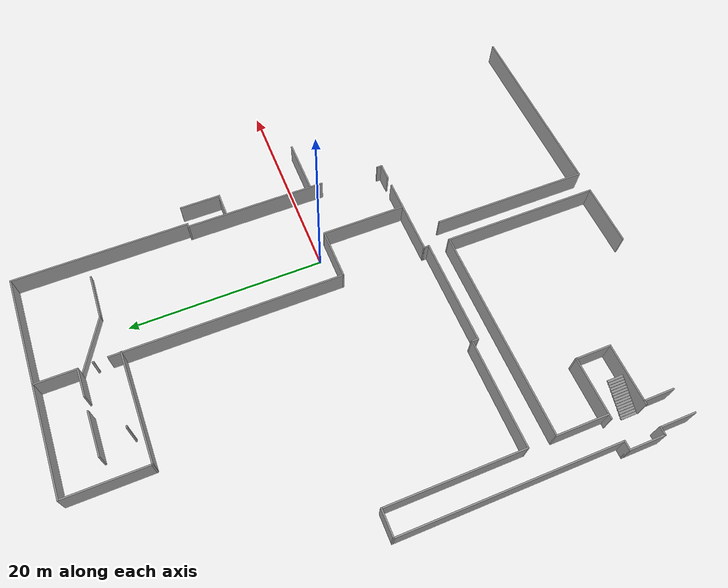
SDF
<sdf version="1.6">
 <model name="uia_section">
  <pose>10.5615 0.198111 0 0 -0 0</pose>
  <link name="Stairs_1">
   <visual name="Stairs_1_Visual_0">
    <pose>-36.0937 -20.6482 0.058333 0 -0 1.5708</pose>
    <geometry><box><size>1.646 0.228733 0.116667</size></box></geometry>
    <material>
     <script><uri>file://media/materials/scripts/gazebo.material</uri><name>Gazebo/Grey</name></script>
     <ambient>1 1 1 1</ambient>
    </material>
    <meta><layer>0</layer></meta>
   </visual>
   <collision name="Stairs_1_Collision_0">
    <geometry><box><size>1.646 0.228733 0.116667</size></box></geometry>
    <pose>-36.0937 -20.6482 0.058333 0 -0 1.5708</pose>
   </collision>
   <visual name="Stairs_1_Visual_1">
    <pose>-35.865 -20.6482 0.175 0 -0 1.5708</pose>
    <geometry><box><size>1.646 0.228733 0.116667</size></box></geometry>
    <material>
     <script><uri>file://media/materials/scripts/gazebo.material</uri><name>Gazebo/Grey</name></script>
     <ambient>1 1 1 1</ambient>
    </material>
    <meta><layer>0</layer></meta>
   </visual>
   <collision name="Stairs_1_Collision_1">
    <geometry><box><size>1.646 0.228733 0.116667</size></box></geometry>
    <pose>-35.865 -20.6482 0.175 0 -0 1.5708</pose>
   </collision>
   <visual name="Stairs_1_Visual_2">
    <pose>-35.6363 -20.6482 0.291667 0 -0 1.5708</pose>
    <geometry><box><size>1.646 0.228733 0.116667</size></box></geometry>
    <material>
     <script><uri>file://media/materials/scripts/gazebo.material</uri><name>Gazebo/Grey</name></script>
     <ambient>1 1 1 1</ambient>
    </material>
    <meta><layer>0</layer></meta>
   </visual>
   <collision name="Stairs_1_Collision_2">
    <geometry><box><size>1.646 0.228733 0.116667</size></box></geometry>
    <pose>-35.6363 -20.6482 0.291667 0 -0 1.5708</pose>
   </collision>
   <visual name="Stairs_1_Visual_3">
    <pose>-35.4075 -20.6482 0.408333 0 -0 1.5708</pose>
    <geometry><box><size>1.646 0.228733 0.116667</size></box></geometry>
    <material>
     <script><uri>file://media/materials/scripts/gazebo.material</uri><name>Gazebo/Grey</name></script>
     <ambient>1 1 1 1</ambient>
    </material>
    <meta><layer>0</layer></meta>
   </visual>
   <collision name="Stairs_1_Collision_3">
    <geometry><box><size>1.646 0.228733 0.116667</size></box></geometry>
    <pose>-35.4075 -20.6482 0.408333 0 -0 1.5708</pose>
   </collision>
   <visual name="Stairs_1_Visual_4">
    <pose>-35.1788 -20.6482 0.525 0 -0 1.5708</pose>
    <geometry><box><size>1.646 0.228733 0.116667</size></box></geometry>
    <material>
     <script><uri>file://media/materials/scripts/gazebo.material</uri><name>Gazebo/Grey</name></script>
     <ambient>1 1 1 1</ambient>
    </material>
    <meta><layer>0</layer></meta>
   </visual>
   <collision name="Stairs_1_Collision_4">
    <geometry><box><size>1.646 0.228733 0.116667</size></box></geometry>
    <pose>-35.1788 -20.6482 0.525 0 -0 1.5708</pose>
   </collision>
   <visual name="Stairs_1_Visual_5">
    <pose>-34.9501 -20.6482 0.641667 0 -0 1.5708</pose>
    <geometry><box><size>1.646 0.228733 0.116667</size></box></geometry>
    <material>
     <script><uri>file://media/materials/scripts/gazebo.material</uri><name>Gazebo/Grey</name></script>
     <ambient>1 1 1 1</ambient>
    </material>
    <meta><layer>0</layer></meta>
   </visual>
   <collision name="Stairs_1_Collision_5">
    <geometry><box><size>1.646 0.228733 0.116667</size></box></geometry>
    <pose>-34.9501 -20.6482 0.641667 0 -0 1.5708</pose>
   </collision>
   <visual name="Stairs_1_Visual_6">
    <pose>-34.7213 -20.6482 0.758333 0 -0 1.5708</pose>
    <geometry><box><size>1.646 0.228733 0.116667</size></box></geometry>
    <material>
     <script><uri>file://media/materials/scripts/gazebo.material</uri><name>Gazebo/Grey</name></script>
     <ambient>1 1 1 1</ambient>
    </material>
    <meta><layer>0</layer></meta>
   </visual>
   <collision name="Stairs_1_Collision_6">
    <geometry><box><size>1.646 0.228733 0.116667</size></box></geometry>
    <pose>-34.7213 -20.6482 0.758333 0 -0 1.5708</pose>
   </collision>
   <visual name="Stairs_1_Visual_7">
    <pose>-34.4926 -20.6482 0.875 0 -0 1.5708</pose>
    <geometry><box><size>1.646 0.228733 0.116667</size></box></geometry>
    <material>
     <script><uri>file://media/materials/scripts/gazebo.material</uri><name>Gazebo/Grey</name></script>
     <ambient>1 1 1 1</ambient>
    </material>
    <meta><layer>0</layer></meta>
   </visual>
   <collision name="Stairs_1_Collision_7">
    <geometry><box><size>1.646 0.228733 0.116667</size></box></geometry>
    <pose>-34.4926 -20.6482 0.875 0 -0 1.5708</pose>
   </collision>
   <visual name="Stairs_1_Visual_8">
    <pose>-34.2639 -20.6482 0.991667 0 -0 1.5708</pose>
    <geometry><box><size>1.646 0.228733 0.116667</size></box></geometry>
    <material>
     <script><uri>file://media/materials/scripts/gazebo.material</uri><name>Gazebo/Grey</name></script>
     <ambient>1 1 1 1</ambient>
    </material>
    <meta><layer>0</layer></meta>
   </visual>
   <collision name="Stairs_1_Collision_8">
    <geometry><box><size>1.646 0.228733 0.116667</size></box></geometry>
    <pose>-34.2639 -20.6482 0.991667 0 -0 1.5708</pose>
   </collision>
   <visual name="Stairs_1_Visual_9">
    <pose>-34.0351 -20.6482 1.10833 0 -0 1.5708</pose>
    <geometry><box><size>1.646 0.228733 0.116667</size></box></geometry>
    <material>
     <script><uri>file://media/materials/scripts/gazebo.material</uri><name>Gazebo/Grey</name></script>
     <ambient>1 1 1 1</ambient>
    </material>
    <meta><layer>0</layer></meta>
   </visual>
   <collision name="Stairs_1_Collision_9">
    <geometry><box><size>1.646 0.228733 0.116667</size></box></geometry>
    <pose>-34.0351 -20.6482 1.10833 0 -0 1.5708</pose>
   </collision>
   <visual name="Stairs_1_Visual_10">
    <pose>-33.8064 -20.6482 1.225 0 -0 1.5708</pose>
    <geometry><box><size>1.646 0.228733 0.116667</size></box></geometry>
    <material>
     <script><uri>file://media/materials/scripts/gazebo.material</uri><name>Gazebo/Grey</name></script>
     <ambient>1 1 1 1</ambient>
    </material>
    <meta><layer>0</layer></meta>
   </visual>
   <collision name="Stairs_1_Collision_10">
    <geometry><box><size>1.646 0.228733 0.116667</size></box></geometry>
    <pose>-33.8064 -20.6482 1.225 0 -0 1.5708</pose>
   </collision>
   <visual name="Stairs_1_Visual_11">
    <pose>-33.5777 -20.6482 1.34167 0 -0 1.5708</pose>
    <geometry><box><size>1.646 0.228733 0.116667</size></box></geometry>
    <material>
     <script><uri>file://media/materials/scripts/gazebo.material</uri><name>Gazebo/Grey</name></script>
     <ambient>1 1 1 1</ambient>
    </material>
    <meta><layer>0</layer></meta>
   </visual>
   <collision name="Stairs_1_Collision_11">
    <geometry><box><size>1.646 0.228733 0.116667</size></box></geometry>
    <pose>-33.5777 -20.6482 1.34167 0 -0 1.5708</pose>
   </collision>
   <visual name="Stairs_1_Visual_12">
    <pose>-33.3489 -20.6482 1.45833 0 -0 1.5708</pose>
    <geometry><box><size>1.646 0.228733 0.116667</size></box></geometry>
    <material>
     <script><uri>file://media/materials/scripts/gazebo.material</uri><name>Gazebo/Grey</name></script>
     <ambient>1 1 1 1</ambient>
    </material>
    <meta><layer>0</layer></meta>
   </visual>
   <collision name="Stairs_1_Collision_12">
    <geometry><box><size>1.646 0.228733 0.116667</size></box></geometry>
    <pose>-33.3489 -20.6482 1.45833 0 -0 1.5708</pose>
   </collision>
   <visual name="Stairs_1_Visual_13">
    <pose>-33.1202 -20.6482 1.575 0 -0 1.5708</pose>
    <geometry><box><size>1.646 0.228733 0.116667</size></box></geometry>
    <material>
     <script><uri>file://media/materials/scripts/gazebo.material</uri><name>Gazebo/Grey</name></script>
     <ambient>1 1 1 1</ambient>
    </material>
    <meta><layer>0</layer></meta>
   </visual>
   <collision name="Stairs_1_Collision_13">
    <geometry><box><size>1.646 0.228733 0.116667</size></box></geometry>
    <pose>-33.1202 -20.6482 1.575 0 -0 1.5708</pose>
   </collision>
   <visual name="Stairs_1_Visual_14">
    <pose>-32.8915 -20.6482 1.69167 0 -0 1.5708</pose>
    <geometry><box><size>1.646 0.228733 0.116667</size></box></geometry>
    <material>
     <script><uri>file://media/materials/scripts/gazebo.material</uri><name>Gazebo/Grey</name></script>
     <ambient>1 1 1 1</ambient>
    </material>
    <meta><layer>0</layer></meta>
   </visual>
   <collision name="Stairs_1_Collision_14">
    <geometry><box><size>1.646 0.228733 0.116667</size></box></geometry>
    <pose>-32.8915 -20.6482 1.69167 0 -0 1.5708</pose>
   </collision>
  </link>
  <link name="Wall_100">
   <collision name="Wall_100_Collision">
    <geometry><box><size>2.94746 0.15 2.5</size></box></geometry>
    <pose>0 0 1.25 0 -0 0</pose>
   </collision>
   <visual name="Wall_100_Visual">
    <pose>0 0 1.25 0 -0 0</pose>
    <geometry><box><size>2.94746 0.15 2.5</size></box></geometry>
    <material>
     <script><uri>file://media/materials/scripts/gazebo.material</uri><name>Gazebo/Grey</name></script>
     <ambient>1 1 1 1</ambient>
    </material>
    <meta><layer>0</layer></meta>
   </visual>
   <pose>-15.482 24.9228 0 0 -0 -3.14153</pose>
  </link>
  <link name="Wall_102">
   <collision name="Wall_102_Collision">
    <geometry><box><size>4.5 0.15 2.5</size></box></geometry>
    <pose>0 0 1.25 0 -0 0</pose>
   </collision>
   <visual name="Wall_102_Visual">
    <pose>0 0 1.25 0 -0 0</pose>
    <geometry><box><size>4.5 0.15 2.5</size></box></geometry>
    <material>
     <script><uri>file://media/materials/scripts/gazebo.material</uri><name>Gazebo/Grey</name></script>
     <ambient>1 1 1 1</ambient>
    </material>
    <meta><layer>0</layer></meta>
   </visual>
   <pose>-20.5803 24.9407 0 0 -0 3.14159</pose>
  </link>
  <link name="Wall_104">
   <collision name="Wall_104_Collision">
    <geometry><box><size>3.75 0.15 2.5</size></box></geometry>
    <pose>0 0 1.25 0 -0 0</pose>
   </collision>
   <visual name="Wall_104_Visual">
    <pose>0 0 1.25 0 -0 0</pose>
    <geometry><box><size>3.75 0.15 2.5</size></box></geometry>
    <material>
     <script><uri>file://media/materials/scripts/gazebo.material</uri><name>Gazebo/Grey</name></script>
     <ambient>1 1 1 1</ambient>
    </material>
    <meta><layer>0</layer></meta>
   </visual>
   <pose>-30.0635 -19.7841 0 0 -0 1.5708</pose>
  </link>
  <link name="Wall_161">
   <collision name="Wall_161_Collision">
    <geometry><box><size>11.553 0.15 2.5</size></box></geometry>
    <pose>0 0 1.25 0 -0 0</pose>
   </collision>
   <visual name="Wall_161_Visual">
    <pose>0 0 1.25 0 -0 0</pose>
    <geometry><box><size>11.553 0.15 2.5</size></box></geometry>
    <material>
     <script><uri>file://media/materials/scripts/gazebo.material</uri><name>Gazebo/Grey</name></script>
     <ambient>1 1 1 1</ambient>
    </material>
    <meta><layer>0</layer></meta>
   </visual>
   <pose>-8.382 29.0229 0 0 -0 0</pose>
  </link>
  <link name="Wall_162">
   <collision name="Wall_162_Collision">
    <geometry><box><size>18 0.15 2.5</size></box></geometry>
    <pose>0 0 1.25 0 -0 0</pose>
   </collision>
   <visual name="Wall_162_Visual">
    <pose>0 0 1.25 0 -0 0</pose>
    <geometry><box><size>18 0.15 2.5</size></box></geometry>
    <material>
     <script><uri>file://media/materials/scripts/gazebo.material</uri><name>Gazebo/Grey</name></script>
     <ambient>1 1 1 1</ambient>
    </material>
    <meta><layer>0</layer></meta>
   </visual>
   <pose>-2.6805 20.0979 0 0 -0 -1.5708</pose>
  </link>
  <link name="Wall_163">
   <collision name="Wall_163_Collision">
    <geometry><box><size>0.488 0.15 2.5</size></box></geometry>
    <pose>0 0 1.25 0 -0 0</pose>
   </collision>
   <visual name="Wall_163_Visual">
    <pose>0 0 1.25 0 -0 0</pose>
    <geometry><box><size>0.488 0.15 2.5</size></box></geometry>
    <material>
     <script><uri>file://media/materials/scripts/gazebo.material</uri><name>Gazebo/Grey</name></script>
     <ambient>1 1 1 1</ambient>
    </material>
    <meta><layer>0</layer></meta>
   </visual>
   <pose>-2.8495 11.1729 0 0 -0 3.14159</pose>
  </link>
  <link name="Wall_164">
   <collision name="Wall_164_Collision">
    <geometry><box><size>14.5908 0.15 2.5</size></box></geometry>
    <pose>0 0 1.25 0 -0 0</pose>
   </collision>
   <visual name="Wall_164_Visual">
    <pose>0 0 1.25 0 -0 0</pose>
    <geometry><box><size>14.5908 0.15 2.5</size></box></geometry>
    <material>
     <script><uri>file://media/materials/scripts/gazebo.material</uri><name>Gazebo/Grey</name></script>
     <ambient>1 1 1 1</ambient>
    </material>
    <meta><layer>0</layer></meta>
   </visual>
   <pose>-3.0185 3.95239 0 0 -0 -1.5708</pose>
  </link>
  <link name="Wall_166">
   <collision name="Wall_166_Collision">
    <geometry><box><size>5.75 0.15 2.5</size></box></geometry>
    <pose>0 0 1.25 0 -0 0</pose>
   </collision>
   <visual name="Wall_166_Visual">
    <pose>0 0 1.25 0 -0 0</pose>
    <geometry><box><size>5.75 0.15 2.5</size></box></geometry>
    <material>
     <script><uri>file://media/materials/scripts/gazebo.material</uri><name>Gazebo/Grey</name></script>
     <ambient>1 1 1 1</ambient>
    </material>
    <meta><layer>0</layer></meta>
   </visual>
   <pose>-0.211923 -2.01323 0 0 -0 0</pose>
  </link>
  <link name="Wall_180">
   <collision name="Wall_180_Collision">
    <geometry><box><size>2.5 0.15 2.5</size></box></geometry>
    <pose>0 0 1.25 0 -0 0</pose>
   </collision>
   <visual name="Wall_180_Visual">
    <pose>0 0 1.25 0 -0 0</pose>
    <geometry><box><size>2.5 0.15 2.5</size></box></geometry>
    <material>
     <script><uri>file://media/materials/scripts/gazebo.material</uri><name>Gazebo/Grey</name></script>
     <ambient>1 1 1 1</ambient>
    </material>
    <meta><layer>0</layer></meta>
   </visual>
   <pose>-1.74605 7.14725 0 0 -0 0</pose>
  </link>
  <link name="Wall_181">
   <collision name="Wall_181_Collision">
    <geometry><box><size>4.25 0.15 2.5</size></box></geometry>
    <pose>0 0 1.25 0 -0 0</pose>
   </collision>
   <visual name="Wall_181_Visual">
    <pose>0 0 1.25 0 -0 0</pose>
    <geometry><box><size>4.25 0.15 2.5</size></box></geometry>
    <material>
     <script><uri>file://media/materials/scripts/gazebo.material</uri><name>Gazebo/Grey</name></script>
     <ambient>1 1 1 1</ambient>
    </material>
    <meta><layer>0</layer></meta>
   </visual>
   <pose>-0.571054 9.19725 0 0 -0 1.5708</pose>
  </link>
  <link name="Wall_217">
   <collision name="Wall_217_Collision">
    <geometry><box><size>0.2 0.15 2.5</size></box></geometry>
    <pose>0 0 1.25 0 -0 0</pose>
   </collision>
   <visual name="Wall_217_Visual">
    <pose>0 0 1.25 0 -0 0</pose>
    <geometry><box><size>0.2 0.15 2.5</size></box></geometry>
    <material>
     <script><uri>file://media/materials/scripts/gazebo.material</uri><name>Gazebo/Grey</name></script>
     <ambient>1 1 1 1</ambient>
    </material>
    <meta><layer>0</layer></meta>
   </visual>
   <pose>-13.9694 23.444 0 0 -0 1.5708</pose>
  </link>
  <link name="Wall_219">
   <collision name="Wall_219_Collision">
    <geometry><box><size>6.18675 0.15 1</size></box></geometry>
    <pose>0 0 0.5 0 -0 0</pose>
   </collision>
   <visual name="Wall_219_Visual">
    <pose>0 0 0.5 0 -0 0</pose>
    <geometry><box><size>6.18675 0.15 1</size></box></geometry>
    <material>
     <script><uri>file://media/materials/scripts/gazebo.material</uri><name>Gazebo/Grey</name></script>
     <ambient>1 1 1 1</ambient>
    </material>
    <meta><layer>0</layer></meta>
   </visual>
   <pose>-11.442 23.4624 0 0 -0 -0.505071</pose>
  </link>
  <link name="Wall_220">
   <collision name="Wall_220_Collision">
    <geometry><box><size>4.78733 0.15 1</size></box></geometry>
    <pose>0 0 0.5 0 -0 0</pose>
   </collision>
   <visual name="Wall_220_Visual">
    <pose>0 0 0.5 0 -0 0</pose>
    <geometry><box><size>4.78733 0.15 1</size></box></geometry>
    <material>
     <script><uri>file://media/materials/scripts/gazebo.material</uri><name>Gazebo/Grey</name></script>
     <ambient>1 1 1 1</ambient>
    </material>
    <meta><layer>0</layer></meta>
   </visual>
   <pose>-6.483 21.9284 0 0 -0 -0.031705</pose>
  </link>
  <link name="Wall_223">
   <collision name="Wall_223_Collision">
    <geometry><box><size>0.25 0.15 4</size></box></geometry>
    <pose>0 0 2 0 -0 0</pose>
   </collision>
   <visual name="Wall_223_Visual">
    <pose>0 0 2 0 -0 0</pose>
    <geometry><box><size>0.25 0.15 4</size></box></geometry>
    <material>
     <script><uri>file://media/materials/scripts/gazebo.material</uri><name>Gazebo/Grey</name></script>
     <ambient>1 1 1 1</ambient>
    </material>
    <meta><layer>0</layer></meta>
   </visual>
   <pose>-21.6725 21.8669 0 0 -0 0</pose>
  </link>
  <link name="Wall_32">
   <collision name="Wall_32_Collision">
    <geometry><box><size>0.6 0.15 2.5</size></box></geometry>
    <pose>0 0 1.25 0 -0 0</pose>
   </collision>
   <visual name="Wall_32_Visual">
    <pose>0 0 1.25 0 -0 0</pose>
    <geometry><box><size>0.6 0.15 2.5</size></box></geometry>
    <material>
     <script><uri>file://media/materials/scripts/gazebo.material</uri><name>Gazebo/Grey</name></script>
     <ambient>1 1 1 1</ambient>
    </material>
    <meta><layer>0</layer></meta>
   </visual>
   <pose>-3.2585 -9.76611 0 0 -0 -1.5708</pose>
  </link>
  <link name="Wall_34">
   <collision name="Wall_34_Collision">
    <geometry><box><size>1.75 0.15 2.5</size></box></geometry>
    <pose>0 0 1.25 0 -0 0</pose>
   </collision>
   <visual name="Wall_34_Visual">
    <pose>0 0 1.25 0 -0 0</pose>
    <geometry><box><size>1.75 0.15 2.5</size></box></geometry>
    <material>
     <script><uri>file://media/materials/scripts/gazebo.material</uri><name>Gazebo/Grey</name></script>
     <ambient>1 1 1 1</ambient>
    </material>
    <meta><layer>0</layer></meta>
   </visual>
   <pose>-4.0585 -9.99111 0 0 -0 3.14159</pose>
  </link>
  <link name="Wall_36">
   <collision name="Wall_36_Collision">
    <geometry><box><size>8.25 0.15 2.5</size></box></geometry>
    <pose>0 0 1.25 0 -0 0</pose>
   </collision>
   <visual name="Wall_36_Visual">
    <pose>0 0 1.25 0 -0 0</pose>
    <geometry><box><size>8.25 0.15 2.5</size></box></geometry>
    <material>
     <script><uri>file://media/materials/scripts/gazebo.material</uri><name>Gazebo/Grey</name></script>
     <ambient>1 1 1 1</ambient>
    </material>
    <meta><layer>0</layer></meta>
   </visual>
   <pose>-10.0254 -9.96974 0 0 -0 3.14159</pose>
  </link>
  <link name="Wall_37">
   <collision name="Wall_37_Collision">
    <geometry><box><size>0.65 0.15 2.5</size></box></geometry>
    <pose>0 0 1.25 0 -0 0</pose>
   </collision>
   <visual name="Wall_37_Visual">
    <pose>0 0 1.25 0 -0 0</pose>
    <geometry><box><size>0.65 0.15 2.5</size></box></geometry>
    <material>
     <script><uri>file://media/materials/scripts/gazebo.material</uri><name>Gazebo/Grey</name></script>
     <ambient>1 1 1 1</ambient>
    </material>
    <meta><layer>0</layer></meta>
   </visual>
   <pose>-14.0754 -10.2197 0 0 -0 -1.5708</pose>
  </link>
  <link name="Wall_40">
   <collision name="Wall_40_Collision">
    <geometry><box><size>11 0.15 2.5</size></box></geometry>
    <pose>0 0 1.25 0 -0 0</pose>
   </collision>
   <visual name="Wall_40_Visual">
    <pose>0 0 1.25 0 -0 0</pose>
    <geometry><box><size>11 0.15 2.5</size></box></geometry>
    <material>
     <script><uri>file://media/materials/scripts/gazebo.material</uri><name>Gazebo/Grey</name></script>
     <ambient>1 1 1 1</ambient>
    </material>
    <meta><layer>0</layer></meta>
   </visual>
   <pose>-19.5004 -10.4697 0 0 -0 3.14159</pose>
  </link>
  <link name="Wall_41">
   <collision name="Wall_41_Collision">
    <geometry><box><size>0.75 0.15 2.5</size></box></geometry>
    <pose>0 0 1.25 0 -0 0</pose>
   </collision>
   <visual name="Wall_41_Visual">
    <pose>0 0 1.25 0 -0 0</pose>
    <geometry><box><size>0.75 0.15 2.5</size></box></geometry>
    <material>
     <script><uri>file://media/materials/scripts/gazebo.material</uri><name>Gazebo/Grey</name></script>
     <ambient>1 1 1 1</ambient>
    </material>
    <meta><layer>0</layer></meta>
   </visual>
   <pose>-24.9254 -10.1697 0 0 -0 1.5708</pose>
  </link>
  <link name="Wall_42">
   <collision name="Wall_42_Collision">
    <geometry><box><size>11 0.15 2.5</size></box></geometry>
    <pose>0 0 1.25 0 -0 0</pose>
   </collision>
   <visual name="Wall_42_Visual">
    <pose>0 0 1.25 0 -0 0</pose>
    <geometry><box><size>11 0.15 2.5</size></box></geometry>
    <material>
     <script><uri>file://media/materials/scripts/gazebo.material</uri><name>Gazebo/Grey</name></script>
     <ambient>1 1 1 1</ambient>
    </material>
    <meta><layer>0</layer></meta>
   </visual>
   <pose>-30.3504 -9.86974 0 0 -0 3.14159</pose>
  </link>
  <link name="Wall_45">
   <collision name="Wall_45_Collision">
    <geometry><box><size>14.0216 0.15 2.5</size></box></geometry>
    <pose>0 0 1.25 0 -0 0</pose>
   </collision>
   <visual name="Wall_45_Visual">
    <pose>0 0 1.25 0 -0 0</pose>
    <geometry><box><size>14.0216 0.15 2.5</size></box></geometry>
    <material>
     <script><uri>file://media/materials/scripts/gazebo.material</uri><name>Gazebo/Grey</name></script>
     <ambient>1 1 1 1</ambient>
    </material>
    <meta><layer>0</layer></meta>
   </visual>
   <pose>-35.7754 -2.93393 0 0 -0 1.57081</pose>
  </link>
  <link name="Wall_46">
   <collision name="Wall_46_Collision">
    <geometry><box><size>2.716 0.15 2.5</size></box></geometry>
    <pose>0 0 1.25 0 -0 0</pose>
   </collision>
   <visual name="Wall_46_Visual">
    <pose>0 0 1.25 0 -0 0</pose>
    <geometry><box><size>2.716 0.15 2.5</size></box></geometry>
    <material>
     <script><uri>file://media/materials/scripts/gazebo.material</uri><name>Gazebo/Grey</name></script>
     <ambient>1 1 1 1</ambient>
    </material>
    <meta><layer>0</layer></meta>
   </visual>
   <pose>-37.0585 4.00189 0 0 -0 3.14159</pose>
  </link>
  <link name="Wall_48">
   <collision name="Wall_48_Collision">
    <geometry><box><size>22.1363 0.15 2.5</size></box></geometry>
    <pose>0 0 1.25 0 -0 0</pose>
   </collision>
   <visual name="Wall_48_Visual">
    <pose>0 0 1.25 0 -0 0</pose>
    <geometry><box><size>22.1363 0.15 2.5</size></box></geometry>
    <material>
     <script><uri>file://media/materials/scripts/gazebo.material</uri><name>Gazebo/Grey</name></script>
     <ambient>1 1 1 1</ambient>
    </material>
    <meta><layer>0</layer></meta>
   </visual>
   <pose>-38.3415 -6.99111 0 0 -0 -1.5708</pose>
  </link>
  <link name="Wall_50">
   <collision name="Wall_50_Collision">
    <geometry><box><size>1 0.15 2.5</size></box></geometry>
    <pose>0 0 1.25 0 -0 0</pose>
   </collision>
   <visual name="Wall_50_Visual">
    <pose>0 0 1.25 0 -0 0</pose>
    <geometry><box><size>1 0.15 2.5</size></box></geometry>
    <material>
     <script><uri>file://media/materials/scripts/gazebo.material</uri><name>Gazebo/Grey</name></script>
     <ambient>1 1 1 1</ambient>
    </material>
    <meta><layer>0</layer></meta>
   </visual>
   <pose>-38.7665 -17.9841 0 0 -0 3.14159</pose>
  </link>
  <link name="Wall_51">
   <collision name="Wall_51_Collision">
    <geometry><box><size>3.75 0.15 2.5</size></box></geometry>
    <pose>0 0 1.25 0 -0 0</pose>
   </collision>
   <visual name="Wall_51_Visual">
    <pose>0 0 1.25 0 -0 0</pose>
    <geometry><box><size>3.75 0.15 2.5</size></box></geometry>
    <material>
     <script><uri>file://media/materials/scripts/gazebo.material</uri><name>Gazebo/Grey</name></script>
     <ambient>1 1 1 1</ambient>
    </material>
    <meta><layer>0</layer></meta>
   </visual>
   <pose>-39.1915 -19.7841 0 0 -0 -1.5708</pose>
  </link>
  <link name="Wall_52">
   <collision name="Wall_52_Collision">
    <geometry><box><size>0.9 0.15 2.5</size></box></geometry>
    <pose>0 0 1.25 0 -0 0</pose>
   </collision>
   <visual name="Wall_52_Visual">
    <pose>0 0 1.25 0 -0 0</pose>
    <geometry><box><size>0.9 0.15 2.5</size></box></geometry>
    <material>
     <script><uri>file://media/materials/scripts/gazebo.material</uri><name>Gazebo/Grey</name></script>
     <ambient>1 1 1 1</ambient>
    </material>
    <meta><layer>0</layer></meta>
   </visual>
   <pose>-38.8165 -21.5841 0 0 -0 0</pose>
  </link>
  <link name="Wall_54">
   <collision name="Wall_54_Collision">
    <geometry><box><size>3.75 0.15 2.5</size></box></geometry>
    <pose>0 0 1.25 0 -0 0</pose>
   </collision>
   <visual name="Wall_54_Visual">
    <pose>0 0 1.25 0 -0 0</pose>
    <geometry><box><size>3.75 0.15 2.5</size></box></geometry>
    <material>
     <script><uri>file://media/materials/scripts/gazebo.material</uri><name>Gazebo/Grey</name></script>
     <ambient>1 1 1 1</ambient>
    </material>
    <meta><layer>0</layer></meta>
   </visual>
   <pose>-38.4415 -23.3841 0 0 -0 -1.5708</pose>
  </link>
  <link name="Wall_64">
   <collision name="Wall_64_Collision">
    <geometry><box><size>6.25 0.15 2.5</size></box></geometry>
    <pose>0 0 1.25 0 -0 0</pose>
   </collision>
   <visual name="Wall_64_Visual">
    <pose>0 0 1.25 0 -0 0</pose>
    <geometry><box><size>6.25 0.15 2.5</size></box></geometry>
    <material>
     <script><uri>file://media/materials/scripts/gazebo.material</uri><name>Gazebo/Grey</name></script>
     <ambient>1 1 1 1</ambient>
    </material>
    <meta><layer>0</layer></meta>
   </visual>
   <pose>-33.1135 -17.9841 0 0 -0 3.14159</pose>
  </link>
  <link name="Wall_69">
   <collision name="Wall_69_Collision">
    <geometry><box><size>6.25 0.15 2.5</size></box></geometry>
    <pose>0 0 1.25 0 -0 0</pose>
   </collision>
   <visual name="Wall_69_Visual">
    <pose>0 0 1.25 0 -0 0</pose>
    <geometry><box><size>6.25 0.15 2.5</size></box></geometry>
    <material>
     <script><uri>file://media/materials/scripts/gazebo.material</uri><name>Gazebo/Grey</name></script>
     <ambient>1 1 1 1</ambient>
    </material>
    <meta><layer>0</layer></meta>
   </visual>
   <pose>-33.1135 -21.5841 0 0 -0 3.14159</pose>
  </link>
  <link name="Wall_71">
   <collision name="Wall_71_Collision">
    <geometry><box><size>3.21395 0.15 2.5</size></box></geometry>
    <pose>0 0 1.25 0 -0 0</pose>
   </collision>
   <visual name="Wall_71_Visual">
    <pose>0 0 1.25 0 -0 0</pose>
    <geometry><box><size>3.21395 0.15 2.5</size></box></geometry>
    <material>
     <script><uri>file://media/materials/scripts/gazebo.material</uri><name>Gazebo/Grey</name></script>
     <ambient>1 1 1 1</ambient>
    </material>
    <meta><layer>0</layer></meta>
   </visual>
   <pose>-35.8435 -23.1161 0 0 -0 -1.5708</pose>
  </link>
  <link name="Wall_73">
   <collision name="Wall_73_Collision">
    <geometry><box><size>5.405 0.15 2.5</size></box></geometry>
    <pose>0 0 1.25 0 -0 0</pose>
   </collision>
   <visual name="Wall_73_Visual">
    <pose>0 0 1.25 0 -0 0</pose>
    <geometry><box><size>5.405 0.15 2.5</size></box></geometry>
    <material>
     <script><uri>file://media/materials/scripts/gazebo.material</uri><name>Gazebo/Grey</name></script>
     <ambient>1 1 1 1</ambient>
    </material>
    <meta><layer>0</layer></meta>
   </visual>
   <pose>-35.7365 -15.3256 0 0 -0 1.5708</pose>
  </link>
  <link name="Wall_76">
   <collision name="Wall_76_Collision">
    <geometry><box><size>21.75 0.15 2.5</size></box></geometry>
    <pose>0 0 1.25 0 -0 0</pose>
   </collision>
   <visual name="Wall_76_Visual">
    <pose>0 0 1.25 0 -0 0</pose>
    <geometry><box><size>21.75 0.15 2.5</size></box></geometry>
    <material>
     <script><uri>file://media/materials/scripts/gazebo.material</uri><name>Gazebo/Grey</name></script>
     <ambient>1 1 1 1</ambient>
    </material>
    <meta><layer>0</layer></meta>
   </visual>
   <pose>-24.9365 -12.6981 0 0 -0 0</pose>
  </link>
  <link name="Wall_78">
   <collision name="Wall_78_Collision">
    <geometry><box><size>16.35 0.15 2.5</size></box></geometry>
    <pose>0 0 1.25 0 -0 0</pose>
   </collision>
   <visual name="Wall_78_Visual">
    <pose>0 0 1.25 0 -0 0</pose>
    <geometry><box><size>16.35 0.15 2.5</size></box></geometry>
    <material>
     <script><uri>file://media/materials/scripts/gazebo.material</uri><name>Gazebo/Grey</name></script>
     <ambient>1 1 1 1</ambient>
    </material>
    <meta><layer>0</layer></meta>
   </visual>
   <pose>-14.1365 -20.7981 0 0 -0 -1.5708</pose>
  </link>
  <link name="Wall_80">
   <collision name="Wall_80_Collision">
    <geometry><box><size>6.5 0.15 2.5</size></box></geometry>
    <pose>0 0 1.25 0 -0 0</pose>
   </collision>
   <visual name="Wall_80_Visual">
    <pose>0 0 1.25 0 -0 0</pose>
    <geometry><box><size>6.5 0.15 2.5</size></box></geometry>
    <material>
     <script><uri>file://media/materials/scripts/gazebo.material</uri><name>Gazebo/Grey</name></script>
     <ambient>1 1 1 1</ambient>
    </material>
    <meta><layer>0</layer></meta>
   </visual>
   <pose>-17.3115 -28.8981 0 0 -0 3.14159</pose>
  </link>
  <link name="Wall_82">
   <collision name="Wall_82_Collision">
    <geometry><box><size>16.35 0.15 2.5</size></box></geometry>
    <pose>0 0 1.25 0 -0 0</pose>
   </collision>
   <visual name="Wall_82_Visual">
    <pose>0 0 1.25 0 -0 0</pose>
    <geometry><box><size>16.35 0.15 2.5</size></box></geometry>
    <material>
     <script><uri>file://media/materials/scripts/gazebo.material</uri><name>Gazebo/Grey</name></script>
     <ambient>1 1 1 1</ambient>
    </material>
    <meta><layer>0</layer></meta>
   </visual>
   <pose>-11.8855 -20.7981 0 0 -0 -1.5708</pose>
  </link>
  <link name="Wall_84">
   <collision name="Wall_84_Collision">
    <geometry><box><size>19.75 0.15 2.5</size></box></geometry>
    <pose>0 0 1.25 0 -0 0</pose>
   </collision>
   <visual name="Wall_84_Visual">
    <pose>0 0 1.25 0 -0 0</pose>
    <geometry><box><size>19.75 0.15 2.5</size></box></geometry>
    <material>
     <script><uri>file://media/materials/scripts/gazebo.material</uri><name>Gazebo/Grey</name></script>
     <ambient>1 1 1 1</ambient>
    </material>
    <meta><layer>0</layer></meta>
   </visual>
   <pose>-2.0855 -28.8981 0 0 -0 0</pose>
  </link>
  <link name="Wall_88">
   <collision name="Wall_88_Collision">
    <geometry><box><size>8.75 0.15 2.5</size></box></geometry>
    <pose>0 0 1.25 0 -0 0</pose>
   </collision>
   <visual name="Wall_88_Visual">
    <pose>0 0 1.25 0 -0 0</pose>
    <geometry><box><size>8.75 0.15 2.5</size></box></geometry>
    <material>
     <script><uri>file://media/materials/scripts/gazebo.material</uri><name>Gazebo/Grey</name></script>
     <ambient>1 1 1 1</ambient>
    </material>
    <meta><layer>0</layer></meta>
   </visual>
   <pose>-8.8245 -5.62811 0 0 -0 1.5708</pose>
  </link>
  <link name="Wall_89">
   <collision name="Wall_89_Collision">
    <geometry><box><size>5.3 0.15 2.5</size></box></geometry>
    <pose>0 0 1.25 0 -0 0</pose>
   </collision>
   <visual name="Wall_89_Visual">
    <pose>0 0 1.25 0 -0 0</pose>
    <geometry><box><size>5.3 0.15 2.5</size></box></geometry>
    <material>
     <script><uri>file://media/materials/scripts/gazebo.material</uri><name>Gazebo/Grey</name></script>
     <ambient>1 1 1 1</ambient>
    </material>
    <meta><layer>0</layer></meta>
   </visual>
   <pose>-11.3993 -1.32788 0 0 -0 3.1415</pose>
  </link>
  <link name="Wall_92">
   <collision name="Wall_92_Collision">
    <geometry><box><size>23.5 0.15 2.5</size></box></geometry>
    <pose>0 0 1.25 0 -0 0</pose>
   </collision>
   <visual name="Wall_92_Visual">
    <pose>0 0 1.25 0 -0 0</pose>
    <geometry><box><size>23.5 0.15 2.5</size></box></geometry>
    <material>
     <script><uri>file://media/materials/scripts/gazebo.material</uri><name>Gazebo/Grey</name></script>
     <ambient>1 1 1 1</ambient>
    </material>
    <meta><layer>0</layer></meta>
   </visual>
   <pose>-13.9742 10.3474 0 0 -0 1.5708</pose>
  </link>
  <link name="Wall_94">
   <collision name="Wall_94_Collision">
    <geometry><box><size>11.35 0.15 2.5</size></box></geometry>
    <pose>0 0 1.25 0 -0 0</pose>
   </collision>
   <visual name="Wall_94_Visual">
    <pose>0 0 1.25 0 -0 0</pose>
    <geometry><box><size>11.35 0.15 2.5</size></box></geometry>
    <material>
     <script><uri>file://media/materials/scripts/gazebo.material</uri><name>Gazebo/Grey</name></script>
     <ambient>1 1 1 1</ambient>
    </material>
    <meta><layer>0</layer></meta>
   </visual>
   <pose>-19.5306 20.8227 0 0 -0 3.14159</pose>
  </link>
  <link name="Wall_96">
   <collision name="Wall_96_Collision">
    <geometry><box><size>8.35 0.15 2.5</size></box></geometry>
    <pose>0 0 1.25 0 -0 0</pose>
   </collision>
   <visual name="Wall_96_Visual">
    <pose>0 0 1.25 0 -0 0</pose>
    <geometry><box><size>8.35 0.15 2.5</size></box></geometry>
    <material>
     <script><uri>file://media/materials/scripts/gazebo.material</uri><name>Gazebo/Grey</name></script>
     <ambient>1 1 1 1</ambient>
    </material>
    <meta><layer>0</layer></meta>
   </visual>
   <pose>-25.1306 24.9227 0 0 -0 1.5708</pose>
  </link>
  <link name="Wall_98">
   <collision name="Wall_98_Collision">
    <geometry><box><size>11.1971 0.15 2.5</size></box></geometry>
    <pose>0 0 1.25 0 -0 0</pose>
   </collision>
   <visual name="Wall_98_Visual">
    <pose>0 0 1.25 0 -0 0</pose>
    <geometry><box><size>11.1971 0.15 2.5</size></box></geometry>
    <material>
     <script><uri>file://media/materials/scripts/gazebo.material</uri><name>Gazebo/Grey</name></script>
     <ambient>1 1 1 1</ambient>
    </material>
    <meta><layer>0</layer></meta>
   </visual>
   <pose>-19.607 29.0228 0 0 -0 1.6e-05</pose>
  </link>
  <link name="Wall_99">
   <collision name="Wall_99_Collision">
    <geometry><box><size>4.25 0.15 2.5</size></box></geometry>
    <pose>0 0 1.25 0 -0 0</pose>
   </collision>
   <visual name="Wall_99_Visual">
    <pose>0 0 1.25 0 -0 0</pose>
    <geometry><box><size>4.25 0.15 2.5</size></box></geometry>
    <material>
     <script><uri>file://media/materials/scripts/gazebo.material</uri><name>Gazebo/Grey</name></script>
     <ambient>1 1 1 1</ambient>
    </material>
    <meta><layer>0</layer></meta>
   </visual>
   <pose>-14.0835 26.9729 0 0 -0 -1.5708</pose>
  </link>
  <static>1</static>
 </model>
</sdf>
